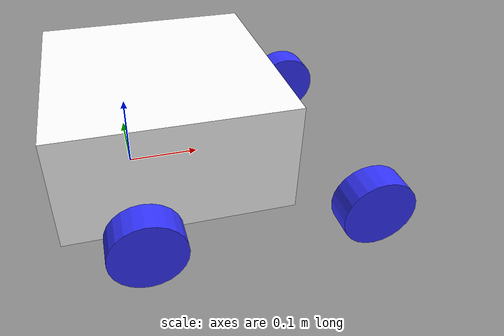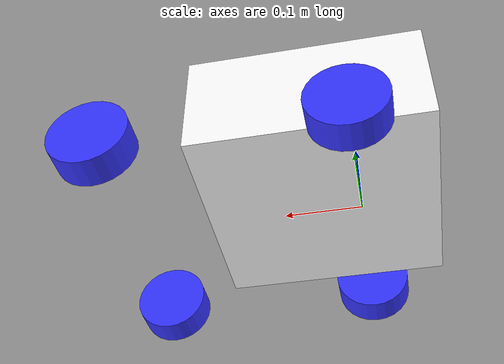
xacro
<?xml version="1.0"?>
<robot xmlns:xacro="http://www.ros.org/wiki/xacro">
    <xacro:include filename="inertial_macros.xacro" />

    <material name="white">
        <color rgba="1 1 1 1"/>
    </material>

    <material name="orange">
        <color rgba="1 0.3 0.1 1"/>
    </material>

    <material name="blue">
        <color rgba="0.2 0.2 1 1"/>
    </material>

    <material name="black">
        <color rgba="0 0 0 1"/>
    </material>

    <link name="base_link">
    </link>

    <joint name="chassis_joint" type="fixed">
        <parent link="base_link"/>
        <child link="chassis"/>
        <origin xyz="-0.1 0 0"/>
    </joint>

    <link name="chassis">
        <visual>
            <origin xyz="0.15 0 0.075" rpy="0 0 0"/>
            <geometry>
                <box size="0.3 0.3 0.15"/>
            </geometry>
            <material name="white"/>
        </visual>
        <collision>
            <origin xyz="0.15 0 0.075" rpy="0 0 0"/>
            <geometry>
                <box size="0.3 0.3 0.15"/>
            </geometry>
        </collision>
        <xacro:inertial_box mass="0.5" x="0.3" y="0.3" z="0.15">
            <origin xyz="0.15 0 0.075" rpy="0 0 0"/>
        </xacro:inertial_box>
    </link>

    <gazebo reference="chassis">
        <material>Gazebo/White</material>
    </gazebo>

    <!-- LEFT REAR WHEEL -->
    <joint name="left_rear_wheel_joint" type="continuous">
        <parent link="base_link"/>
        <child link="left_rear_wheel"/>
        <origin xyz="0 0.175 0" rpy="-${pi/2} 0 0"/>
        <axis xyz="0 0 1"/>
    </joint>

    <link name="left_rear_wheel">
        <visual>
            <geometry>
                <cylinder length="0.04" radius="0.05" />
            </geometry>
            <material name="blue"/>
        </visual>
        <collision>
            <geometry>
                <cylinder length="0.04" radius="0.05" />
            </geometry>
        </collision>
        <xacro:inertial_cylinder mass="0.1" length="0.05" radius="0.05">
            <origin xyz="0 0 0" rpy="0 0 0"/>
        </xacro:inertial_cylinder>
    </link>

    <gazebo reference="left_rear_wheel">
        <material>Gazebo/Blue</material>
    </gazebo>

    <!-- RIGHT REAR WHEEL -->
    <joint name="right_rear_wheel_joint" type="continuous">
        <parent link="base_link"/>
        <child link="right_rear_wheel"/>
        <origin xyz="0 -0.175 0" rpy="${pi/2} 0 0"/>
        <axis xyz="0 0 -1"/>
    </joint>

    <link name="right_rear_wheel">
        <visual>
            <geometry>
                <cylinder length="0.04" radius="0.05" />
            </geometry>
            <material name="blue"/>
        </visual>
        <collision>
            <geometry>
                <cylinder length="0.04" radius="0.05" />
            </geometry>
        </collision>
        <xacro:inertial_cylinder mass="0.1" length="0.05" radius="0.05">
            <origin xyz="0 0 0" rpy="0 0 0"/>
        </xacro:inertial_cylinder>
    </link>

    <gazebo reference="right_rear_wheel">
        <material>Gazebo/Blue</material>
    </gazebo>

    <!-- LEFT FRONT WHEEL -->
    <joint name="left_front_wheel_joint" type="continuous">
        <parent link="base_link"/>
        <child link="left_front_wheel"/>
        <origin xyz="0.3 0.175 0" rpy="-${pi/2} 0 0"/>
        <axis xyz="0 0 1"/>
    </joint>

    <link name="left_front_wheel">
        <visual>
            <geometry>
                <cylinder length="0.04" radius="0.05" />
            </geometry>
            <material name="blue"/>
        </visual>
        <collision>
            <geometry>
                <cylinder length="0.04" radius="0.05" />
            </geometry>
        </collision>
        <xacro:inertial_cylinder mass="0.1" length="0.05" radius="0.05">
            <origin xyz="0 0 0" rpy="0 0 0"/>
        </xacro:inertial_cylinder>
    </link>

    <gazebo reference="left_front_wheel">
        <material>Gazebo/Blue</material>
    </gazebo>

    <!-- RIGHT FRONT WHEEL -->
    <joint name="right_front_wheel_joint" type="continuous">
        <parent link="base_link"/>
        <child link="right_front_wheel"/>
        <origin xyz="0.3 -0.175 0" rpy="${pi/2} 0 0"/>
        <axis xyz="0 0 -1"/>
    </joint>

    <link name="right_front_wheel">
        <visual>
            <geometry>
                <cylinder length="0.04" radius="0.05" />
            </geometry>
            <material name="blue"/>
        </visual>
        <collision>
            <geometry>
                <cylinder length="0.04" radius="0.05" />
            </geometry>
        </collision>
        <xacro:inertial_cylinder mass="0.1" length="0.05" radius="0.05">
            <origin xyz="0 0 0" rpy="0 0 0"/>
        </xacro:inertial_cylinder>
    </link>

    <gazebo reference="right_front_wheel">
        <material>Gazebo/Blue</material>
    </gazebo>
</robot>
